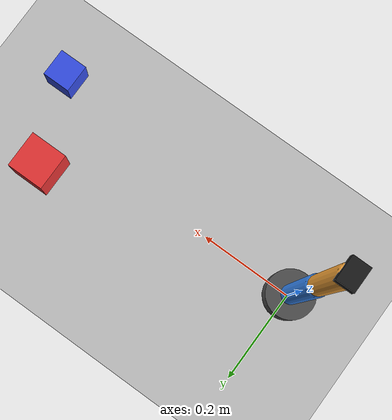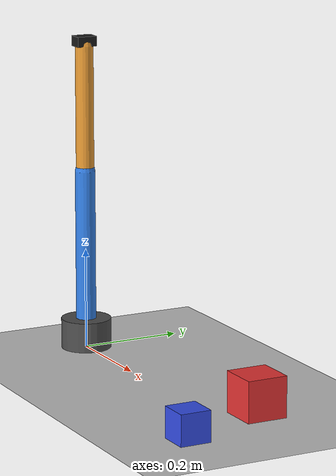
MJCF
<mujoco model="two_link_arm">
  <compiler angle="radian"/>
  <option timestep="0.002" gravity="0 0 -9.81"/>
  <visual>
    <global offwidth="640" offheight="480"/>
  </visual>
  <asset>
    <texture name="grid" type="2d" builtin="checker" rgb1="0.85 0.85 0.85" rgb2="0.65 0.65 0.65" width="256" height="256"/>
    <material name="floor" texture="grid" texrepeat="6 6" reflectance="0.1"/>
  </asset>
  <default>
    <!-- arm geoms do not collide with each other (capsules overlap at the joints) -->
    <default class="arm"><geom contype="0" conaffinity="0"/></default>
  </default>
  <worldbody>
    <light pos="0.5 -0.5 2.0" dir="-0.3 0.3 -1"/>
    <geom name="floor" type="plane" size="2 2 0.05" material="floor"/>
    <geom name="red_box" type="box" pos="0.55 0.08 0.04" size="0.04 0.04 0.04" rgba="0.9 0.2 0.2 1"/>
    <geom name="blue_box" type="box" pos="0.62 -0.10 0.03" size="0.03 0.03 0.03" rgba="0.2 0.3 0.9 1"/>

    <body name="base_link" pos="0 0 0">
      <geom class="arm" name="base" type="cylinder" size="0.05 0.03" pos="0 0 0.03" rgba="0.3 0.3 0.3 1"/>
      <body name="link1" pos="0 0 0.06">
        <joint name="joint1" type="hinge" axis="0 1 0" range="-1.57 1.57" damping="0.5"/>
        <geom class="arm" name="link1_geom" type="capsule" fromto="0 0 0 0 0 0.30" size="0.02" rgba="0.2 0.5 0.9 1"/>
        <body name="link2" pos="0 0 0.30">
          <joint name="joint2" type="hinge" axis="0 1 0" range="-2.0 2.0" damping="0.5"/>
          <geom class="arm" name="link2_geom" type="capsule" fromto="0 0 0 0 0 0.25" size="0.018" rgba="0.9 0.6 0.2 1"/>
          <body name="camera_link" pos="0 0 0.26">
            <geom class="arm" name="camera_body" type="box" size="0.015 0.02 0.01" rgba="0.1 0.1 0.1 1"/>
            <camera name="tip_camera" pos="0 0 0.01" xyaxes="0 -1 0 -1 0 0" fovy="60"/>
          </body>
        </body>
      </body>
    </body>
  </worldbody>
  <actuator>
    <position name="joint1_pos" joint="joint1" kp="30" ctrlrange="-1.57 1.57"/>
    <position name="joint2_pos" joint="joint2" kp="20" ctrlrange="-2.0 2.0"/>
  </actuator>
</mujoco>
